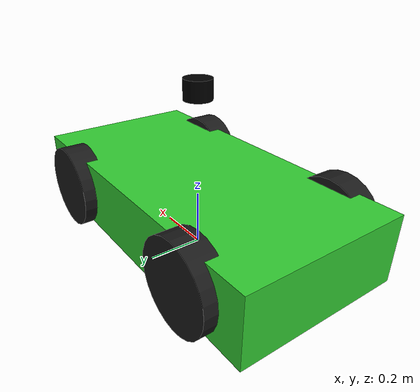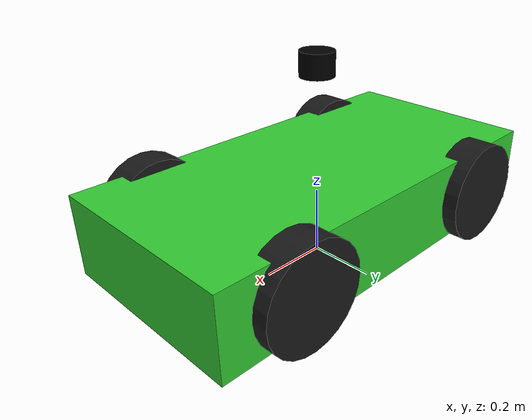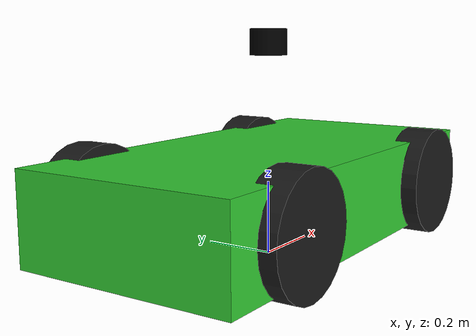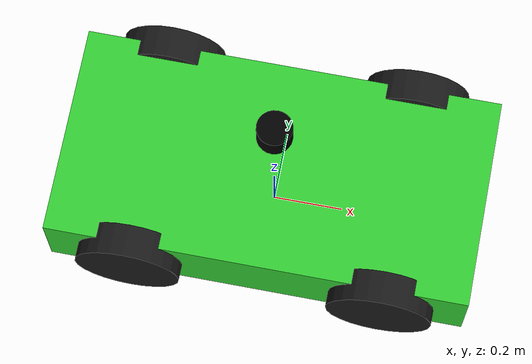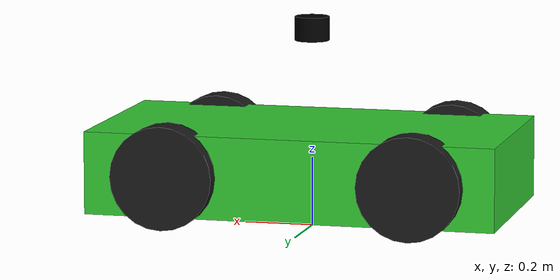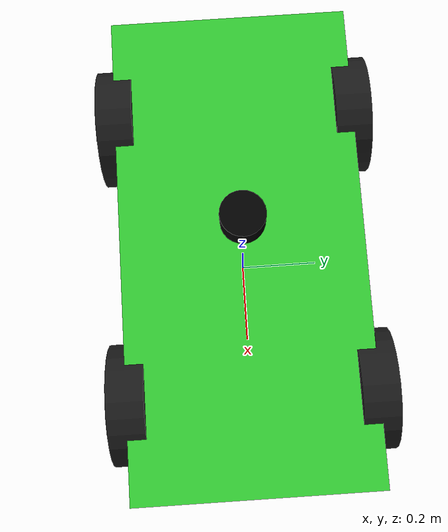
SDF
<?xml version="1.0"?>
<sdf version="1.9">
  <model name="ackermann_rl_car">

    <!-- Chassis -->
    <link name="chassis">
      <pose>0 0 0.18 0 0 0</pose>

      <inertial>
        <mass>18.0</mass>
        <inertia>
          <ixx>1.8</ixx>
          <iyy>1.8</iyy>
          <izz>1.8</izz>
        </inertia>
      </inertial>

      <collision name="collision">
        <geometry>
          <box>
            <size>1.2 0.6 0.24</size>
          </box>
        </geometry>
      </collision>

      <visual name="visual">
        <geometry>
          <box>
            <size>1.2 0.6 0.24</size>
          </box>
        </geometry>
        <material>
          <ambient>0.2 0.8 0.2 1.0</ambient>
          <diffuse>0.2 0.8 0.2 1.0</diffuse>
        </material>
      </visual>

      <!-- Camera Sensor (Imported from 4-wheel) -->
      <sensor name='front_camera' type='camera'>
        <pose>0.7 0 0.2 0 0 0</pose> <!-- Outside front face of chassis -->
        <camera>
          <horizontal_fov>1.047</horizontal_fov>
          <image>
            <width>84</width>
            <height>84</height>
            <format>R8G8B8</format>
          </image>
          <clip>
            <near>0.02</near>
            <far>100</far>
          </clip>
        </camera>
        <always_on>1</always_on>
        <update_rate>30</update_rate>
        <visualize>true</visualize>
        <topic>/camera/image_raw</topic>
      </sensor>
    </link>

    <!-- LiDAR Sensor -->
    <link name="lidar_link">
      <pose relative_to="chassis">0 0 0.4 0 0 0</pose>
      <inertial>
        <mass>0.1</mass>
        <inertia>
          <ixx>0.001</ixx>
          <iyy>0.001</iyy>
          <izz>0.001</izz>
        </inertia>
      </inertial>
      <visual name="visual">
        <geometry>
          <cylinder>
            <radius>0.05</radius>
            <length>0.07</length>
          </cylinder>
        </geometry>
        <material>
          <ambient>0.0 0.0 0.0 1.0</ambient>
          <diffuse>0.0 0.0 0.0 1.0</diffuse>
        </material>
      </visual>
      <sensor name="lidar" type="gpu_lidar">
        <topic>/scan</topic>
        <update_rate>10</update_rate>
        <lidar>
          <scan>
            <horizontal>
              <samples>360</samples>
              <resolution>1</resolution>
              <min_angle>-3.14159</min_angle>
              <max_angle>3.14159</max_angle>
            </horizontal>
          </scan>
          <range>
            <min>0.1</min>
            <max>10.0</max>
            <resolution>0.01</resolution>
          </range>
          <noise>
            <type>gaussian</type>
            <mean>0.0</mean>
            <stddev>0.01</stddev>
          </noise>
        </lidar>
        <always_on>1</always_on>
        <visualize>true</visualize>
      </sensor>
    </link>
    <joint name="lidar_joint" type="fixed">
      <parent>chassis</parent>
      <child>lidar_link</child>
    </joint>

    <!-- Front Left Steering Hub -->
    <link name="front_left_steering_hub">
      <pose relative_to="chassis">0.36 0.3 0 0 0 0</pose>
      <inertial>
        <mass>1.0</mass>
        <inertia>
          <ixx>0.01</ixx>
          <iyy>0.01</iyy>
          <izz>0.01</izz>
        </inertia>
      </inertial>
    </link>

    <joint name="front_left_steering_joint" type="revolute">
      <parent>chassis</parent>
      <child>front_left_steering_hub</child>
      <axis>
        <xyz>0 0 1</xyz>
        <limit>
          <lower>-0.7</lower>
          <upper>0.7</upper>
          <effort>10000</effort>
        </limit>
      </axis>
    </joint>

    <!-- Front Right Steering Hub -->
    <link name="front_right_steering_hub">
      <pose relative_to="chassis">0.36 -0.3 0 0 0 0</pose>
      <inertial>
        <mass>1.0</mass>
        <inertia>
          <ixx>0.01</ixx>
          <iyy>0.01</iyy>
          <izz>0.01</izz>
        </inertia>
      </inertial>
    </link>

    <joint name="front_right_steering_joint" type="revolute">
      <parent>chassis</parent>
      <child>front_right_steering_hub</child>
      <axis>
        <xyz>0 0 1</xyz>
        <limit>
          <lower>-0.7</lower>
          <upper>0.7</upper>
          <effort>10000</effort>
        </limit>
      </axis>
    </joint>

    <!-- Front Left Wheel -->
    <link name="front_left_wheel">
      <pose relative_to="front_left_steering_hub">0 0 0 -1.5708 0 0</pose>

      <inertial>
        <mass>2.0</mass>
        <inertia>
          <ixx>0.05</ixx>
          <iyy>0.05</iyy>
          <izz>0.05</izz>
        </inertia>
      </inertial>

      <collision name="collision">
        <geometry>
          <cylinder>
            <radius>0.15</radius>
            <length>0.09</length>
          </cylinder>
        </geometry>
        <surface>
          <friction>
            <ode>
              <mu>1.0</mu>
              <mu2>1.0</mu2>
            </ode>
          </friction>
        </surface>
      </collision>

      <visual name="visual">
        <geometry>
          <cylinder>
            <radius>0.15</radius>
            <length>0.09</length>
          </cylinder>
        </geometry>
        <material>
          <ambient>0.1 0.1 0.1 1.0</ambient>
          <diffuse>0.1 0.1 0.1 1.0</diffuse>
        </material>
      </visual>
    </link>

    <joint name="front_left_wheel_joint" type="revolute">
      <parent>front_left_steering_hub</parent>
      <child>front_left_wheel</child>
      <axis>
        <xyz>0 0 1</xyz>
      </axis>
    </joint>

    <!-- Front Right Wheel -->
    <link name="front_right_wheel">
      <pose relative_to="front_right_steering_hub">0 0 0 -1.5708 0 0</pose>

      <inertial>
        <mass>2.0</mass>
        <inertia>
          <ixx>0.05</ixx>
          <iyy>0.05</iyy>
          <izz>0.05</izz>
        </inertia>
      </inertial>

      <collision name="collision">
        <geometry>
          <cylinder>
            <radius>0.15</radius>
            <length>0.09</length>
          </cylinder>
        </geometry>
        <surface>
          <friction>
            <ode>
              <mu>1.0</mu>
              <mu2>1.0</mu2>
            </ode>
          </friction>
        </surface>
      </collision>

      <visual name="visual">
        <geometry>
          <cylinder>
            <radius>0.15</radius>
            <length>0.09</length>
          </cylinder>
        </geometry>
        <material>
          <ambient>0.1 0.1 0.1 1.0</ambient>
          <diffuse>0.1 0.1 0.1 1.0</diffuse>
        </material>
      </visual>
    </link>

    <joint name="front_right_wheel_joint" type="revolute">
      <parent>front_right_steering_hub</parent>
      <child>front_right_wheel</child>
      <axis>
        <xyz>0 0 1</xyz>
      </axis>
    </joint>

    <!-- Rear Left Wheel -->
    <link name="rear_left_wheel">
      <pose relative_to="chassis">-0.36 0.3 0 -1.5708 0 0</pose>

      <inertial>
        <mass>2.0</mass>
        <inertia>
          <ixx>0.05</ixx>
          <iyy>0.05</iyy>
          <izz>0.05</izz>
        </inertia>
      </inertial>

      <collision name="collision">
        <geometry>
          <cylinder>
            <radius>0.15</radius>
            <length>0.09</length>
          </cylinder>
        </geometry>
        <surface>
          <friction>
            <ode>
              <mu>1.0</mu>
              <mu2>1.0</mu2>
            </ode>
          </friction>
        </surface>
      </collision>

      <visual name="visual">
        <geometry>
          <cylinder>
            <radius>0.15</radius>
            <length>0.09</length>
          </cylinder>
        </geometry>
        <material>
          <ambient>0.1 0.1 0.1 1.0</ambient>
          <diffuse>0.1 0.1 0.1 1.0</diffuse>
        </material>
      </visual>
    </link>

    <joint name="rear_left_wheel_joint" type="revolute">
      <parent>chassis</parent>
      <child>rear_left_wheel</child>
      <axis>
        <xyz>0 0 1</xyz>
      </axis>
    </joint>

    <!-- Rear Right Wheel -->
    <link name="rear_right_wheel">
      <pose relative_to="chassis">-0.36 -0.3 0 -1.5708 0 0</pose>

      <inertial>
        <mass>2.0</mass>
        <inertia>
          <ixx>0.05</ixx>
          <iyy>0.05</iyy>
          <izz>0.05</izz>
        </inertia>
      </inertial>

      <collision name="collision">
        <geometry>
          <cylinder>
            <radius>0.15</radius>
            <length>0.09</length>
          </cylinder>
        </geometry>
        <surface>
          <friction>
            <ode>
              <mu>1.0</mu>
              <mu2>1.0</mu2>
            </ode>
          </friction>
        </surface>
      </collision>

      <visual name="visual">
        <geometry>
          <cylinder>
            <radius>0.15</radius>
            <length>0.09</length>
          </cylinder>
        </geometry>
        <material>
          <ambient>0.1 0.1 0.1 1.0</ambient>
          <diffuse>0.1 0.1 0.1 1.0</diffuse>
        </material>
      </visual>
    </link>

    <joint name="rear_right_wheel_joint" type="revolute">
      <parent>chassis</parent>
      <child>rear_right_wheel</child>
      <axis>
        <xyz>0 0 1</xyz>
      </axis>
    </joint>

    <!-- Sensors System (Required for Camera & LiDAR) -->
    <plugin filename="gz-sim-sensors-system"
      name="gz::sim::systems::Sensors">
    </plugin>

    <!-- Ackermann Steering Plugin -->
    <plugin
      filename="gz-sim-ackermann-steering-system"
      name="gz::sim::systems::AckermannSteering">
      <!-- Drive wheels (all 4 wheels) -->
      <left_joint>front_left_wheel_joint</left_joint>
      <left_joint>rear_left_wheel_joint</left_joint>
      <right_joint>front_right_wheel_joint</right_joint>
      <right_joint>rear_right_wheel_joint</right_joint>
      <!-- Steering joints -->
      <left_steering_joint>front_left_steering_joint</left_steering_joint>
      <right_steering_joint>front_right_steering_joint</right_steering_joint>
      <wheel_base>0.72</wheel_base>
      <wheel_separation>0.6</wheel_separation>
      <steering_limit>0.7</steering_limit>
      <wheel_radius>0.15</wheel_radius>
      <min_velocity>-2.0</min_velocity>
      <max_velocity>2.0</max_velocity>
      <min_acceleration>-2.0</min_acceleration>
      <max_acceleration>2.0</max_acceleration>
      <topic>/cmd_vel</topic>
      <odom_topic>/odom</odom_topic>
      <odom_publish_frequency>50</odom_publish_frequency>
    </plugin>

  </model>
</sdf>
